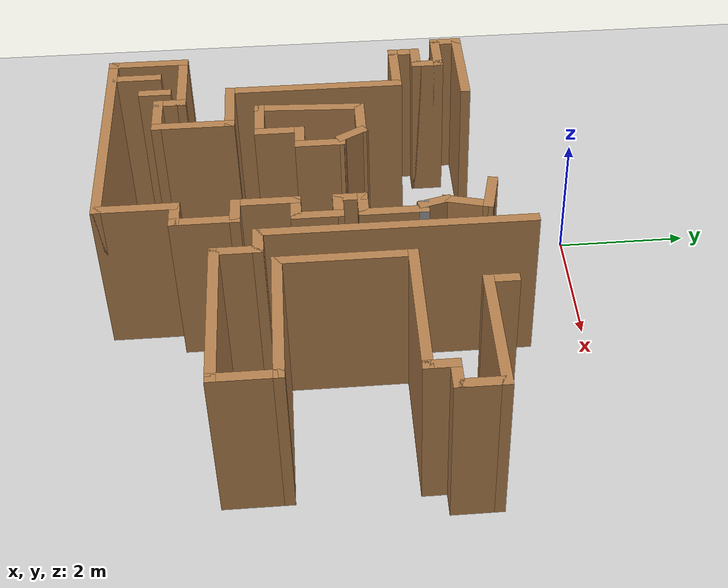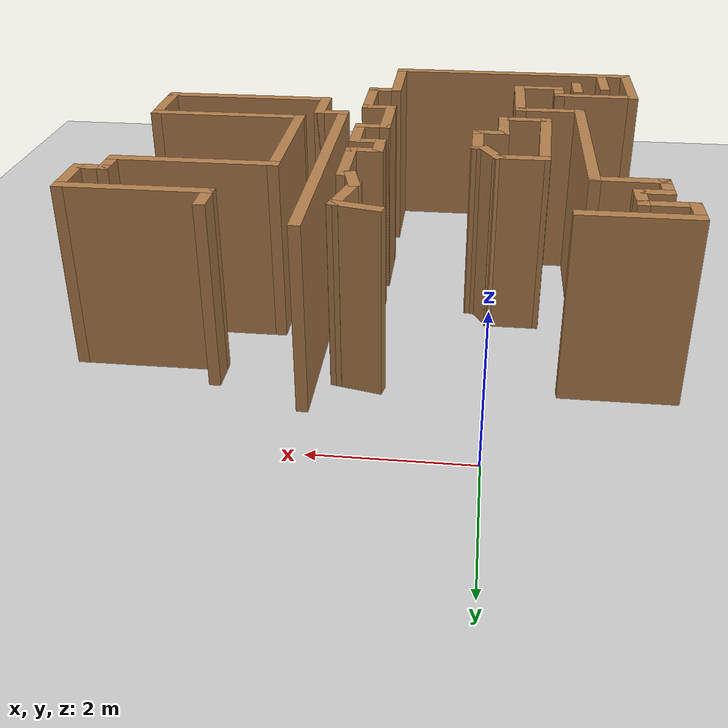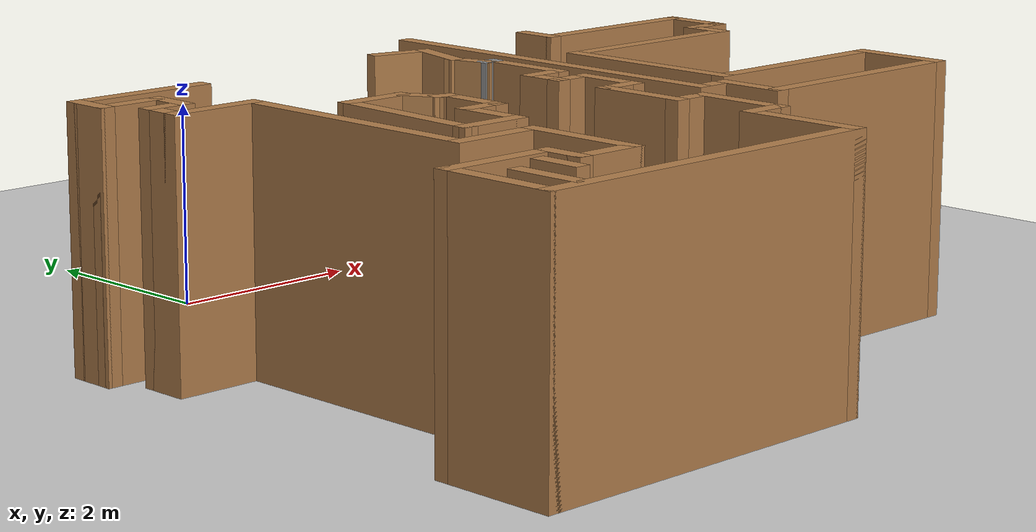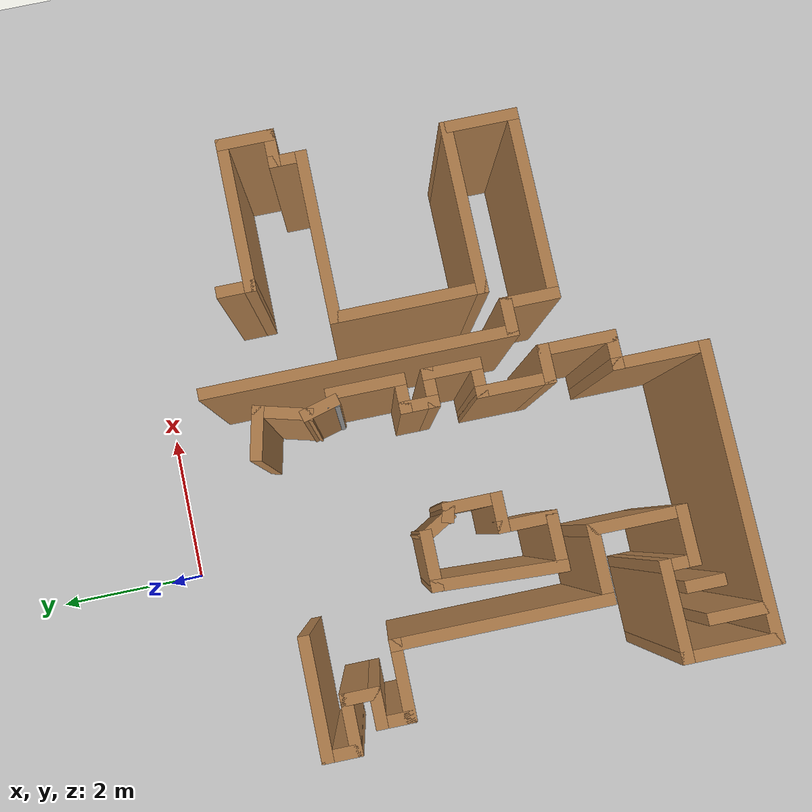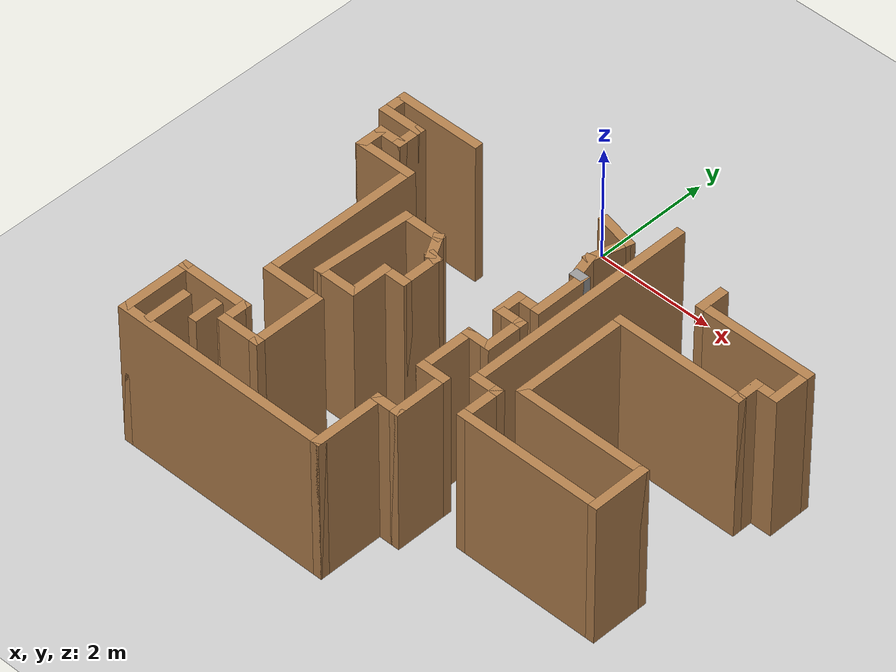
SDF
<sdf version="1.7">
 <world name="default">
  <model name="ground_plane">
   <static>1</static>
   <link name="link">
    <collision name="collision">
     <geometry><plane><normal>0 0 1</normal><size>100 100</size></plane></geometry>
     <surface>
      <contact><collide_bitmask>65535</collide_bitmask></contact>
      <friction><ode><mu>100</mu><mu2>50</mu2></ode></friction>
     </surface>
    </collision>
    <visual name="visual">
     <cast_shadows>0</cast_shadows>
     <geometry><plane><normal>0 0 1</normal><size>100 100</size></plane></geometry>
     <material>
      <script><uri>file://media/materials/scripts/gazebo.material</uri><name>Gazebo/Grey</name></script>
     </material>
    </visual>
   </link>
  </model>
  <model name="map_32">
   <pose>1.44168 -0.43788 0 0 -0 0</pose>
   <link name="Wall_123">
    <collision name="Wall_123_Collision">
     <geometry><box><size>0.678088 0.15 2.5</size></box></geometry>
     <pose>0 0 1.25 0 -0 0</pose>
    </collision>
    <visual name="Wall_123_Visual">
     <pose>0 0 1.25 0 -0 0</pose>
     <geometry><box><size>0.678088 0.15 2.5</size></box></geometry>
     <material>
      <script><uri>file://media/materials/scripts/gazebo.material</uri><name>Gazebo/Wood</name></script>
      <ambient>1 1 1 1</ambient>
     </material>
     <meta><layer>0</layer></meta>
    </visual>
    <pose>0.125069 -0.998927 0 0 -0 -0.226782</pose>
   </link>
   <link name="Wall_130">
    <collision name="Wall_130_Collision">
     <geometry><box><size>0.75 0.15 2.5</size></box></geometry>
     <pose>0 0 1.25 0 -0 0</pose>
    </collision>
    <visual name="Wall_130_Visual">
     <pose>0 0 1.25 0 -0 0</pose>
     <geometry><box><size>0.75 0.15 2.5</size></box></geometry>
     <material>
      <script><uri>file://media/materials/scripts/gazebo.material</uri><name>Gazebo/Wood</name></script>
      <ambient>1 1 1 1</ambient>
     </material>
     <meta><layer>0</layer></meta>
    </visual>
    <pose>-1.8838 -4.27841 0 0 -0 0</pose>
   </link>
   <link name="Wall_131">
    <collision name="Wall_131_Collision">
     <geometry><box><size>0.75 0.15 2.5</size></box></geometry>
     <pose>0 0 1.25 0 -0 0</pose>
    </collision>
    <visual name="Wall_131_Visual">
     <pose>0 0 1.25 0 -0 0</pose>
     <geometry><box><size>0.75 0.15 2.5</size></box></geometry>
     <material>
      <script><uri>file://media/materials/scripts/gazebo.material</uri><name>Gazebo/Wood</name></script>
      <ambient>1 1 1 1</ambient>
     </material>
     <meta><layer>0</layer></meta>
    </visual>
    <pose>-1.5838 -3.97841 0 0 -0 1.5708</pose>
   </link>
   <link name="Wall_132">
    <collision name="Wall_132_Collision">
     <geometry><box><size>0.5 0.15 2.5</size></box></geometry>
     <pose>0 0 1.25 0 -0 0</pose>
    </collision>
    <visual name="Wall_132_Visual">
     <pose>0 0 1.25 0 -0 0</pose>
     <geometry><box><size>0.5 0.15 2.5</size></box></geometry>
     <material>
      <script><uri>file://media/materials/scripts/gazebo.material</uri><name>Gazebo/Wood</name></script>
      <ambient>1 1 1 1</ambient>
     </material>
     <meta><layer>0</layer></meta>
    </visual>
    <pose>-1.4088 -3.67841 0 0 -0 0</pose>
   </link>
   <link name="Wall_133">
    <collision name="Wall_133_Collision">
     <geometry><box><size>0.75 0.15 2.5</size></box></geometry>
     <pose>0 0 1.25 0 -0 0</pose>
    </collision>
    <visual name="Wall_133_Visual">
     <pose>0 0 1.25 0 -0 0</pose>
     <geometry><box><size>0.75 0.15 2.5</size></box></geometry>
     <material>
      <script><uri>file://media/materials/scripts/gazebo.material</uri><name>Gazebo/Wood</name></script>
      <ambient>1 1 1 1</ambient>
     </material>
     <meta><layer>0</layer></meta>
    </visual>
    <pose>-1.2338 -3.37841 0 0 -0 1.5708</pose>
   </link>
   <link name="Wall_134">
    <collision name="Wall_134_Collision">
     <geometry><box><size>0.25 0.15 2.5</size></box></geometry>
     <pose>0 0 1.25 0 -0 0</pose>
    </collision>
    <visual name="Wall_134_Visual">
     <pose>0 0 1.25 0 -0 0</pose>
     <geometry><box><size>0.25 0.15 2.5</size></box></geometry>
     <material>
      <script><uri>file://media/materials/scripts/gazebo.material</uri><name>Gazebo/Wood</name></script>
      <ambient>1 1 1 1</ambient>
     </material>
     <meta><layer>0</layer></meta>
    </visual>
    <pose>-1.28209 -3.06547 0 0 -0 2.87979</pose>
   </link>
   <link name="Wall_135">
    <collision name="Wall_135_Collision">
     <geometry><box><size>0.5 0.15 2.5</size></box></geometry>
     <pose>0 0 1.25 0 -0 0</pose>
    </collision>
    <visual name="Wall_135_Visual">
     <pose>0 0 1.25 0 -0 0</pose>
     <geometry><box><size>0.5 0.15 2.5</size></box></geometry>
     <material>
      <script><uri>file://media/materials/scripts/gazebo.material</uri><name>Gazebo/Wood</name></script>
      <ambient>1 1 1 1</ambient>
     </material>
     <meta><layer>0</layer></meta>
    </visual>
    <pose>-1.41789 -2.90097 0 0 -0 2.0944</pose>
   </link>
   <link name="Wall_136">
    <collision name="Wall_136_Collision">
     <geometry><box><size>0.75 0.15 2.5</size></box></geometry>
     <pose>0 0 1.25 0 -0 0</pose>
    </collision>
    <visual name="Wall_136_Visual">
     <pose>0 0 1.25 0 -0 0</pose>
     <geometry><box><size>0.75 0.15 2.5</size></box></geometry>
     <material>
      <script><uri>file://media/materials/scripts/gazebo.material</uri><name>Gazebo/Wood</name></script>
      <ambient>1 1 1 1</ambient>
     </material>
     <meta><layer>0</layer></meta>
    </visual>
    <pose>-1.80539 -2.74942 0 0 -0 3.14159</pose>
   </link>
   <link name="Wall_137">
    <collision name="Wall_137_Collision">
     <geometry><box><size>1.681 0.15 2.5</size></box></geometry>
     <pose>0 0 1.25 0 -0 0</pose>
    </collision>
    <visual name="Wall_137_Visual">
     <pose>0 0 1.25 0 -0 0</pose>
     <geometry><box><size>1.681 0.15 2.5</size></box></geometry>
     <material>
      <script><uri>file://media/materials/scripts/gazebo.material</uri><name>Gazebo/Wood</name></script>
      <ambient>1 1 1 1</ambient>
     </material>
     <meta><layer>0</layer></meta>
    </visual>
    <pose>-2.14459 -3.51392 0 0 -0 -1.62203</pose>
   </link>
   <link name="Wall_139">
    <collision name="Wall_139_Collision">
     <geometry><box><size>0.75 0.15 2.5</size></box></geometry>
     <pose>0 0 1.25 0 -0 0</pose>
    </collision>
    <visual name="Wall_139_Visual">
     <pose>0 0 1.25 0 -0 0</pose>
     <geometry><box><size>0.75 0.15 2.5</size></box></geometry>
     <material>
      <script><uri>file://media/materials/scripts/gazebo.material</uri><name>Gazebo/Wood</name></script>
      <ambient>1 1 1 1</ambient>
     </material>
     <meta><layer>0</layer></meta>
    </visual>
    <pose>-3.14925 -6.1875 0 0 -0 -1.5708</pose>
   </link>
   <link name="Wall_142">
    <collision name="Wall_142_Collision">
     <geometry><box><size>0.5 0.15 2.5</size></box></geometry>
     <pose>0 0 1.25 0 -0 0</pose>
    </collision>
    <visual name="Wall_142_Visual">
     <pose>0 0 1.25 0 -0 0</pose>
     <geometry><box><size>0.5 0.15 2.5</size></box></geometry>
     <material>
      <script><uri>file://media/materials/scripts/gazebo.material</uri><name>Gazebo/Wood</name></script>
      <ambient>1 1 1 1</ambient>
     </material>
     <meta><layer>0</layer></meta>
    </visual>
    <pose>-2.72686 -5.89352 0 0 -0 1.5708</pose>
   </link>
   <link name="Wall_24">
    <collision name="Wall_24_Collision">
     <geometry><box><size>1.5 0.15 2.5</size></box></geometry>
     <pose>0 0 1.25 0 -0 0</pose>
    </collision>
    <visual name="Wall_24_Visual">
     <pose>0 0 1.25 0 -0 0</pose>
     <geometry><box><size>1.5 0.15 2.5</size></box></geometry>
     <material>
      <script><uri>file://media/materials/scripts/gazebo.material</uri><name>Gazebo/Wood</name></script>
      <ambient>1 1 1 1</ambient>
     </material>
     <meta><layer>0</layer></meta>
    </visual>
    <pose>-3.10735 -1.07593 0 0 -0 3.14159</pose>
   </link>
   <link name="Wall_27">
    <collision name="Wall_27_Collision">
     <geometry><box><size>0.5 0.15 2.5</size></box></geometry>
     <pose>0 0 1.25 0 -0 0</pose>
    </collision>
    <visual name="Wall_27_Visual">
     <pose>0 0 1.25 0 -0 0</pose>
     <geometry><box><size>0.5 0.15 2.5</size></box></geometry>
     <material>
      <script><uri>file://media/materials/scripts/gazebo.material</uri><name>Gazebo/Wood</name></script>
      <ambient>1 1 1 1</ambient>
     </material>
     <meta><layer>0</layer></meta>
    </visual>
    <pose>-3.78235 -1.25093 0 0 -0 -1.5708</pose>
   </link>
   <link name="Wall_28">
    <collision name="Wall_28_Collision">
     <geometry><box><size>0.75 0.15 2.5</size></box></geometry>
     <pose>0 0 1.25 0 -0 0</pose>
    </collision>
    <visual name="Wall_28_Visual">
     <pose>0 0 1.25 0 -0 0</pose>
     <geometry><box><size>0.75 0.15 2.5</size></box></geometry>
     <material>
      <script><uri>file://media/materials/scripts/gazebo.material</uri><name>Gazebo/Wood</name></script>
      <ambient>1 1 1 1</ambient>
     </material>
     <meta><layer>0</layer></meta>
    </visual>
    <pose>-3.48235 -1.42593 0 0 -0 0</pose>
   </link>
   <link name="Wall_29">
    <collision name="Wall_29_Collision">
     <geometry><box><size>0.5 0.15 2.5</size></box></geometry>
     <pose>0 0 1.25 0 -0 0</pose>
    </collision>
    <visual name="Wall_29_Visual">
     <pose>0 0 1.25 0 -0 0</pose>
     <geometry><box><size>0.5 0.15 2.5</size></box></geometry>
     <material>
      <script><uri>file://media/materials/scripts/gazebo.material</uri><name>Gazebo/Wood</name></script>
      <ambient>1 1 1 1</ambient>
     </material>
     <meta><layer>0</layer></meta>
    </visual>
    <pose>-3.18235 -1.60092 0 0 -0 -1.5708</pose>
   </link>
   <link name="Wall_30">
    <collision name="Wall_30_Collision">
     <geometry><box><size>0.5 0.15 2.5</size></box></geometry>
     <pose>0 0 1.25 0 -0 0</pose>
    </collision>
    <visual name="Wall_30_Visual">
     <pose>0 0 1.25 0 -0 0</pose>
     <geometry><box><size>0.5 0.15 2.5</size></box></geometry>
     <material>
      <script><uri>file://media/materials/scripts/gazebo.material</uri><name>Gazebo/Wood</name></script>
      <ambient>1 1 1 1</ambient>
     </material>
     <meta><layer>0</layer></meta>
    </visual>
    <pose>-3.35735 -1.77592 0 0 -0 3.14159</pose>
   </link>
   <link name="Wall_31">
    <collision name="Wall_31_Collision">
     <geometry><box><size>0.5 0.15 2.5</size></box></geometry>
     <pose>0 0 1.25 0 -0 0</pose>
    </collision>
    <visual name="Wall_31_Visual">
     <pose>0 0 1.25 0 -0 0</pose>
     <geometry><box><size>0.5 0.15 2.5</size></box></geometry>
     <material>
      <script><uri>file://media/materials/scripts/gazebo.material</uri><name>Gazebo/Wood</name></script>
      <ambient>1 1 1 1</ambient>
     </material>
     <meta><layer>0</layer></meta>
    </visual>
    <pose>-3.53235 -1.95093 0 0 -0 -1.5708</pose>
   </link>
   <link name="Wall_32">
    <collision name="Wall_32_Collision">
     <geometry><box><size>1 0.15 2.5</size></box></geometry>
     <pose>0 0 1.25 0 -0 0</pose>
    </collision>
    <visual name="Wall_32_Visual">
     <pose>0 0 1.25 0 -0 0</pose>
     <geometry><box><size>1 0.15 2.5</size></box></geometry>
     <material>
      <script><uri>file://media/materials/scripts/gazebo.material</uri><name>Gazebo/Wood</name></script>
      <ambient>1 1 1 1</ambient>
     </material>
     <meta><layer>0</layer></meta>
    </visual>
    <pose>-3.10735 -2.12593 0 0 -0 0</pose>
   </link>
   <link name="Wall_33">
    <collision name="Wall_33_Collision">
     <geometry><box><size>2.75 0.15 2.5</size></box></geometry>
     <pose>0 0 1.25 0 -0 0</pose>
    </collision>
    <visual name="Wall_33_Visual">
     <pose>0 0 1.25 0 -0 0</pose>
     <geometry><box><size>2.75 0.15 2.5</size></box></geometry>
     <material>
      <script><uri>file://media/materials/scripts/gazebo.material</uri><name>Gazebo/Wood</name></script>
      <ambient>1 1 1 1</ambient>
     </material>
     <meta><layer>0</layer></meta>
    </visual>
    <pose>-2.68235 -3.42592 0 0 -0 -1.5708</pose>
   </link>
   <link name="Wall_34">
    <collision name="Wall_34_Collision">
     <geometry><box><size>1 0.15 2.5</size></box></geometry>
     <pose>0 0 1.25 0 -0 0</pose>
    </collision>
    <visual name="Wall_34_Visual">
     <pose>0 0 1.25 0 -0 0</pose>
     <geometry><box><size>1 0.15 2.5</size></box></geometry>
     <material>
      <script><uri>file://media/materials/scripts/gazebo.material</uri><name>Gazebo/Wood</name></script>
      <ambient>1 1 1 1</ambient>
     </material>
     <meta><layer>0</layer></meta>
    </visual>
    <pose>-2.25735 -4.72593 0 0 -0 0</pose>
   </link>
   <link name="Wall_37">
    <collision name="Wall_37_Collision">
     <geometry><box><size>1.25 0.15 2.5</size></box></geometry>
     <pose>0 0 1.25 0 -0 0</pose>
    </collision>
    <visual name="Wall_37_Visual">
     <pose>0 0 1.25 0 -0 0</pose>
     <geometry><box><size>1.25 0.15 2.5</size></box></geometry>
     <material>
      <script><uri>file://media/materials/scripts/gazebo.material</uri><name>Gazebo/Wood</name></script>
      <ambient>1 1 1 1</ambient>
     </material>
     <meta><layer>0</layer></meta>
    </visual>
    <pose>-1.83235 -5.27592 0 0 -0 -1.5708</pose>
   </link>
   <link name="Wall_40">
    <collision name="Wall_40_Collision">
     <geometry><box><size>0.75 0.15 2.5</size></box></geometry>
     <pose>0 0 1.25 0 -0 0</pose>
    </collision>
    <visual name="Wall_40_Visual">
     <pose>0 0 1.25 0 -0 0</pose>
     <geometry><box><size>0.75 0.15 2.5</size></box></geometry>
     <material>
      <script><uri>file://media/materials/scripts/gazebo.material</uri><name>Gazebo/Wood</name></script>
      <ambient>1 1 1 1</ambient>
     </material>
     <meta><layer>0</layer></meta>
    </visual>
    <pose>-2.13235 -5.82592 0 0 -0 3.14159</pose>
   </link>
   <link name="Wall_41">
    <collision name="Wall_41_Collision">
     <geometry><box><size>0.5 0.15 2.5</size></box></geometry>
     <pose>0 0 1.25 0 -0 0</pose>
    </collision>
    <visual name="Wall_41_Visual">
     <pose>0 0 1.25 0 -0 0</pose>
     <geometry><box><size>0.5 0.15 2.5</size></box></geometry>
     <material>
      <script><uri>file://media/materials/scripts/gazebo.material</uri><name>Gazebo/Wood</name></script>
      <ambient>1 1 1 1</ambient>
     </material>
     <meta><layer>0</layer></meta>
    </visual>
    <pose>-2.43235 -5.65092 0 0 -0 1.5708</pose>
   </link>
   <link name="Wall_42">
    <collision name="Wall_42_Collision">
     <geometry><box><size>1.25 0.15 2.5</size></box></geometry>
     <pose>0 0 1.25 0 -0 0</pose>
    </collision>
    <visual name="Wall_42_Visual">
     <pose>0 0 1.25 0 -0 0</pose>
     <geometry><box><size>1.25 0.15 2.5</size></box></geometry>
     <material>
      <script><uri>file://media/materials/scripts/gazebo.material</uri><name>Gazebo/Wood</name></script>
      <ambient>1 1 1 1</ambient>
     </material>
     <meta><layer>0</layer></meta>
    </visual>
    <pose>-2.98235 -5.47593 0 0 -0 3.14159</pose>
   </link>
   <link name="Wall_43">
    <collision name="Wall_43_Collision">
     <geometry><box><size>1.25 0.15 2.5</size></box></geometry>
     <pose>0 0 1.25 0 -0 0</pose>
    </collision>
    <visual name="Wall_43_Visual">
     <pose>0 0 1.25 0 -0 0</pose>
     <geometry><box><size>1.25 0.15 2.5</size></box></geometry>
     <material>
      <script><uri>file://media/materials/scripts/gazebo.material</uri><name>Gazebo/Wood</name></script>
      <ambient>1 1 1 1</ambient>
     </material>
     <meta><layer>0</layer></meta>
    </visual>
    <pose>-3.53235 -6.02592 0 0 -0 -1.5708</pose>
   </link>
   <link name="Wall_44">
    <collision name="Wall_44_Collision">
     <geometry><box><size>3.75 0.15 2.5</size></box></geometry>
     <pose>0 0 1.25 0 -0 0</pose>
    </collision>
    <visual name="Wall_44_Visual">
     <pose>0 0 1.25 0 -0 0</pose>
     <geometry><box><size>3.75 0.15 2.5</size></box></geometry>
     <material>
      <script><uri>file://media/materials/scripts/gazebo.material</uri><name>Gazebo/Wood</name></script>
      <ambient>1 1 1 1</ambient>
     </material>
     <meta><layer>0</layer></meta>
    </visual>
    <pose>-1.73235 -6.57592 0 0 -0 0</pose>
   </link>
   <link name="Wall_45">
    <collision name="Wall_45_Collision">
     <geometry><box><size>1.25 0.15 2.5</size></box></geometry>
     <pose>0 0 1.25 0 -0 0</pose>
    </collision>
    <visual name="Wall_45_Visual">
     <pose>0 0 1.25 0 -0 0</pose>
     <geometry><box><size>1.25 0.15 2.5</size></box></geometry>
     <material>
      <script><uri>file://media/materials/scripts/gazebo.material</uri><name>Gazebo/Wood</name></script>
      <ambient>1 1 1 1</ambient>
     </material>
     <meta><layer>0</layer></meta>
    </visual>
    <pose>0.067648 -6.02592 0 0 -0 1.5708</pose>
   </link>
   <link name="Wall_46">
    <collision name="Wall_46_Collision">
     <geometry><box><size>0.5 0.15 2.5</size></box></geometry>
     <pose>0 0 1.25 0 -0 0</pose>
    </collision>
    <visual name="Wall_46_Visual">
     <pose>0 0 1.25 0 -0 0</pose>
     <geometry><box><size>0.5 0.15 2.5</size></box></geometry>
     <material>
      <script><uri>file://media/materials/scripts/gazebo.material</uri><name>Gazebo/Wood</name></script>
      <ambient>1 1 1 1</ambient>
     </material>
     <meta><layer>0</layer></meta>
    </visual>
    <pose>0.242648 -5.47593 0 0 -0 0</pose>
   </link>
   <link name="Wall_47">
    <collision name="Wall_47_Collision">
     <geometry><box><size>1 0.15 2.5</size></box></geometry>
     <pose>0 0 1.25 0 -0 0</pose>
    </collision>
    <visual name="Wall_47_Visual">
     <pose>0 0 1.25 0 -0 0</pose>
     <geometry><box><size>1 0.15 2.5</size></box></geometry>
     <material>
      <script><uri>file://media/materials/scripts/gazebo.material</uri><name>Gazebo/Wood</name></script>
      <ambient>1 1 1 1</ambient>
     </material>
     <meta><layer>0</layer></meta>
    </visual>
    <pose>0.417648 -5.05093 0 0 -0 1.5708</pose>
   </link>
   <link name="Wall_48">
    <collision name="Wall_48_Collision">
     <geometry><box><size>0.5 0.15 2.5</size></box></geometry>
     <pose>0 0 1.25 0 -0 0</pose>
    </collision>
    <visual name="Wall_48_Visual">
     <pose>0 0 1.25 0 -0 0</pose>
     <geometry><box><size>0.5 0.15 2.5</size></box></geometry>
     <material>
      <script><uri>file://media/materials/scripts/gazebo.material</uri><name>Gazebo/Wood</name></script>
      <ambient>1 1 1 1</ambient>
     </material>
     <meta><layer>0</layer></meta>
    </visual>
    <pose>0.242648 -4.62592 0 0 -0 3.14159</pose>
   </link>
   <link name="Wall_49">
    <collision name="Wall_49_Collision">
     <geometry><box><size>1 0.15 2.5</size></box></geometry>
     <pose>0 0 1.25 0 -0 0</pose>
    </collision>
    <visual name="Wall_49_Visual">
     <pose>0 0 1.25 0 -0 0</pose>
     <geometry><box><size>1 0.15 2.5</size></box></geometry>
     <material>
      <script><uri>file://media/materials/scripts/gazebo.material</uri><name>Gazebo/Wood</name></script>
      <ambient>1 1 1 1</ambient>
     </material>
     <meta><layer>0</layer></meta>
    </visual>
    <pose>0.067648 -4.20092 0 0 -0 1.5708</pose>
   </link>
   <link name="Wall_50">
    <collision name="Wall_50_Collision">
     <geometry><box><size>0.5 0.15 2.5</size></box></geometry>
     <pose>0 0 1.25 0 -0 0</pose>
    </collision>
    <visual name="Wall_50_Visual">
     <pose>0 0 1.25 0 -0 0</pose>
     <geometry><box><size>0.5 0.15 2.5</size></box></geometry>
     <material>
      <script><uri>file://media/materials/scripts/gazebo.material</uri><name>Gazebo/Wood</name></script>
      <ambient>1 1 1 1</ambient>
     </material>
     <meta><layer>0</layer></meta>
    </visual>
    <pose>0.242648 -3.77592 0 0 -0 0</pose>
   </link>
   <link name="Wall_51">
    <collision name="Wall_51_Collision">
     <geometry><box><size>0.75 0.15 2.5</size></box></geometry>
     <pose>0 0 1.25 0 -0 0</pose>
    </collision>
    <visual name="Wall_51_Visual">
     <pose>0 0 1.25 0 -0 0</pose>
     <geometry><box><size>0.75 0.15 2.5</size></box></geometry>
     <material>
      <script><uri>file://media/materials/scripts/gazebo.material</uri><name>Gazebo/Wood</name></script>
      <ambient>1 1 1 1</ambient>
     </material>
     <meta><layer>0</layer></meta>
    </visual>
    <pose>0.417648 -3.47593 0 0 -0 1.5708</pose>
   </link>
   <link name="Wall_52">
    <collision name="Wall_52_Collision">
     <geometry><box><size>0.5 0.15 2.5</size></box></geometry>
     <pose>0 0 1.25 0 -0 0</pose>
    </collision>
    <visual name="Wall_52_Visual">
     <pose>0 0 1.25 0 -0 0</pose>
     <geometry><box><size>0.5 0.15 2.5</size></box></geometry>
     <material>
      <script><uri>file://media/materials/scripts/gazebo.material</uri><name>Gazebo/Wood</name></script>
      <ambient>1 1 1 1</ambient>
     </material>
     <meta><layer>0</layer></meta>
    </visual>
    <pose>0.242648 -3.17592 0 0 -0 3.14159</pose>
   </link>
   <link name="Wall_53">
    <collision name="Wall_53_Collision">
     <geometry><box><size>0.5 0.15 2.5</size></box></geometry>
     <pose>0 0 1.25 0 -0 0</pose>
    </collision>
    <visual name="Wall_53_Visual">
     <pose>0 0 1.25 0 -0 0</pose>
     <geometry><box><size>0.5 0.15 2.5</size></box></geometry>
     <material>
      <script><uri>file://media/materials/scripts/gazebo.material</uri><name>Gazebo/Wood</name></script>
      <ambient>1 1 1 1</ambient>
     </material>
     <meta><layer>0</layer></meta>
    </visual>
    <pose>0.067648 -3.00093 0 0 -0 1.5708</pose>
   </link>
   <link name="Wall_54">
    <collision name="Wall_54_Collision">
     <geometry><box><size>0.5 0.15 2.5</size></box></geometry>
     <pose>0 0 1.25 0 -0 0</pose>
    </collision>
    <visual name="Wall_54_Visual">
     <pose>0 0 1.25 0 -0 0</pose>
     <geometry><box><size>0.5 0.15 2.5</size></box></geometry>
     <material>
      <script><uri>file://media/materials/scripts/gazebo.material</uri><name>Gazebo/Wood</name></script>
      <ambient>1 1 1 1</ambient>
     </material>
     <meta><layer>0</layer></meta>
    </visual>
    <pose>0.242648 -2.82592 0 0 -0 0</pose>
   </link>
   <link name="Wall_55">
    <collision name="Wall_55_Collision">
     <geometry><box><size>1 0.15 2.5</size></box></geometry>
     <pose>0 0 1.25 0 -0 0</pose>
    </collision>
    <visual name="Wall_55_Visual">
     <pose>0 0 1.25 0 -0 0</pose>
     <geometry><box><size>1 0.15 2.5</size></box></geometry>
     <material>
      <script><uri>file://media/materials/scripts/gazebo.material</uri><name>Gazebo/Wood</name></script>
      <ambient>1 1 1 1</ambient>
     </material>
     <meta><layer>0</layer></meta>
    </visual>
    <pose>0.417648 -2.40092 0 0 -0 1.5708</pose>
   </link>
   <link name="Wall_56">
    <collision name="Wall_56_Collision">
     <geometry><box><size>0.25 0.15 2.5</size></box></geometry>
     <pose>0 0 1.25 0 -0 0</pose>
    </collision>
    <visual name="Wall_56_Visual">
     <pose>0 0 1.25 0 -0 0</pose>
     <geometry><box><size>0.25 0.15 2.5</size></box></geometry>
     <material>
      <script><uri>file://media/materials/scripts/gazebo.material</uri><name>Gazebo/Grey</name></script>
      <ambient>1 1 1 1</ambient>
     </material>
     <meta><layer>0</layer></meta>
    </visual>
    <pose>0.367648 -1.97592 0 0 -0 3.14159</pose>
   </link>
   <link name="Wall_57">
    <collision name="Wall_57_Collision">
     <geometry><box><size>0.5 0.15 2.5</size></box></geometry>
     <pose>0 0 1.25 0 -0 0</pose>
    </collision>
    <visual name="Wall_57_Visual">
     <pose>0 0 1.25 0 -0 0</pose>
     <geometry><box><size>0.5 0.15 2.5</size></box></geometry>
     <material>
      <script><uri>file://media/materials/scripts/gazebo.material</uri><name>Gazebo/Wood</name></script>
      <ambient>1 1 1 1</ambient>
     </material>
     <meta><layer>0</layer></meta>
    </visual>
    <pose>0.272354 -1.80689 0 0 -0 1.8326</pose>
   </link>
   <link name="Wall_58">
    <collision name="Wall_58_Collision">
     <geometry><box><size>0.75 0.15 2.5</size></box></geometry>
     <pose>0 0 1.25 0 -0 0</pose>
    </collision>
    <visual name="Wall_58_Visual">
     <pose>0 0 1.25 0 -0 0</pose>
     <geometry><box><size>0.75 0.15 2.5</size></box></geometry>
     <material>
      <script><uri>file://media/materials/scripts/gazebo.material</uri><name>Gazebo/Wood</name></script>
      <ambient>1 1 1 1</ambient>
     </material>
     <meta><layer>0</layer></meta>
    </visual>
    <pose>0.304707 -1.34807 0 0 -0 1.309</pose>
   </link>
   <link name="Wall_63">
    <collision name="Wall_63_Collision">
     <geometry><box><size>4 0.15 2.5</size></box></geometry>
     <pose>0 0 1.25 0 -0 0</pose>
    </collision>
    <visual name="Wall_63_Visual">
     <pose>0 0 1.25 0 -0 0</pose>
     <geometry><box><size>4 0.15 2.5</size></box></geometry>
     <material>
      <script><uri>file://media/materials/scripts/gazebo.material</uri><name>Gazebo/Wood</name></script>
      <ambient>1 1 1 1</ambient>
     </material>
     <meta><layer>0</layer></meta>
    </visual>
    <pose>0.732352 -2.38329 0 0 -0 -1.5708</pose>
   </link>
   <link name="Wall_64">
    <collision name="Wall_64_Collision">
     <geometry><box><size>0.5 0.15 2.5</size></box></geometry>
     <pose>0 0 1.25 0 -0 0</pose>
    </collision>
    <visual name="Wall_64_Visual">
     <pose>0 0 1.25 0 -0 0</pose>
     <geometry><box><size>0.5 0.15 2.5</size></box></geometry>
     <material>
      <script><uri>file://media/materials/scripts/gazebo.material</uri><name>Gazebo/Wood</name></script>
      <ambient>1 1 1 1</ambient>
     </material>
     <meta><layer>0</layer></meta>
    </visual>
    <pose>0.907352 -4.3083 0 0 -0 0</pose>
   </link>
   <link name="Wall_65">
    <collision name="Wall_65_Collision">
     <geometry><box><size>0.75 0.15 2.5</size></box></geometry>
     <pose>0 0 1.25 0 -0 0</pose>
    </collision>
    <visual name="Wall_65_Visual">
     <pose>0 0 1.25 0 -0 0</pose>
     <geometry><box><size>0.75 0.15 2.5</size></box></geometry>
     <material>
      <script><uri>file://media/materials/scripts/gazebo.material</uri><name>Gazebo/Wood</name></script>
      <ambient>1 1 1 1</ambient>
     </material>
     <meta><layer>0</layer></meta>
    </visual>
    <pose>1.08235 -4.6083 0 0 -0 -1.5708</pose>
   </link>
   <link name="Wall_66">
    <collision name="Wall_66_Collision">
     <geometry><box><size>2.5 0.15 2.5</size></box></geometry>
     <pose>0 0 1.25 0 -0 0</pose>
    </collision>
    <visual name="Wall_66_Visual">
     <pose>0 0 1.25 0 -0 0</pose>
     <geometry><box><size>2.5 0.15 2.5</size></box></geometry>
     <material>
      <script><uri>file://media/materials/scripts/gazebo.material</uri><name>Gazebo/Wood</name></script>
      <ambient>1 1 1 1</ambient>
     </material>
     <meta><layer>0</layer></meta>
    </visual>
    <pose>2.25735 -4.90829 0 0 -0 0</pose>
   </link>
   <link name="Wall_69">
    <collision name="Wall_69_Collision">
     <geometry><box><size>1 0.15 2.5</size></box></geometry>
     <pose>0 0 1.25 0 -0 0</pose>
    </collision>
    <visual name="Wall_69_Visual">
     <pose>0 0 1.25 0 -0 0</pose>
     <geometry><box><size>1 0.15 2.5</size></box></geometry>
     <material>
      <script><uri>file://media/materials/scripts/gazebo.material</uri><name>Gazebo/Wood</name></script>
      <ambient>1 1 1 1</ambient>
     </material>
     <meta><layer>0</layer></meta>
    </visual>
    <pose>3.43235 -4.4833 0 0 -0 1.5708</pose>
   </link>
   <link name="Wall_70">
    <collision name="Wall_70_Collision">
     <geometry><box><size>2.25 0.15 2.5</size></box></geometry>
     <pose>0 0 1.25 0 -0 0</pose>
    </collision>
    <visual name="Wall_70_Visual">
     <pose>0 0 1.25 0 -0 0</pose>
     <geometry><box><size>2.25 0.15 2.5</size></box></geometry>
     <material>
      <script><uri>file://media/materials/scripts/gazebo.material</uri><name>Gazebo/Wood</name></script>
      <ambient>1 1 1 1</ambient>
     </material>
     <meta><layer>0</layer></meta>
    </visual>
    <pose>2.38235 -4.0583 0 0 -0 3.14159</pose>
   </link>
   <link name="Wall_71">
    <collision name="Wall_71_Collision">
     <geometry><box><size>2 0.15 2.5</size></box></geometry>
     <pose>0 0 1.25 0 -0 0</pose>
    </collision>
    <visual name="Wall_71_Visual">
     <pose>0 0 1.25 0 -0 0</pose>
     <geometry><box><size>2 0.15 2.5</size></box></geometry>
     <material>
      <script><uri>file://media/materials/scripts/gazebo.material</uri><name>Gazebo/Wood</name></script>
      <ambient>1 1 1 1</ambient>
     </material>
     <meta><layer>0</layer></meta>
    </visual>
    <pose>1.33235 -3.13329 0 0 -0 1.5708</pose>
   </link>
   <link name="Wall_72">
    <collision name="Wall_72_Collision">
     <geometry><box><size>2.25 0.15 2.5</size></box></geometry>
     <pose>0 0 1.25 0 -0 0</pose>
    </collision>
    <visual name="Wall_72_Visual">
     <pose>0 0 1.25 0 -0 0</pose>
     <geometry><box><size>2.25 0.15 2.5</size></box></geometry>
     <material>
      <script><uri>file://media/materials/scripts/gazebo.material</uri><name>Gazebo/Wood</name></script>
      <ambient>1 1 1 1</ambient>
     </material>
     <meta><layer>0</layer></meta>
    </visual>
    <pose>2.38235 -2.2083 0 0 -0 0</pose>
   </link>
   <link name="Wall_73">
    <collision name="Wall_73_Collision">
     <geometry><box><size>0.5 0.15 2.5</size></box></geometry>
     <pose>0 0 1.25 0 -0 0</pose>
    </collision>
    <visual name="Wall_73_Visual">
     <pose>0 0 1.25 0 -0 0</pose>
     <geometry><box><size>0.5 0.15 2.5</size></box></geometry>
     <material>
      <script><uri>file://media/materials/scripts/gazebo.material</uri><name>Gazebo/Wood</name></script>
      <ambient>1 1 1 1</ambient>
     </material>
     <meta><layer>0</layer></meta>
    </visual>
    <pose>3.43235 -2.03329 0 0 -0 1.5708</pose>
   </link>
   <link name="Wall_74">
    <collision name="Wall_74_Collision">
     <geometry><box><size>0.5 0.15 2.5</size></box></geometry>
     <pose>0 0 1.25 0 -0 0</pose>
    </collision>
    <visual name="Wall_74_Visual">
     <pose>0 0 1.25 0 -0 0</pose>
     <geometry><box><size>0.5 0.15 2.5</size></box></geometry>
     <material>
      <script><uri>file://media/materials/scripts/gazebo.material</uri><name>Gazebo/Wood</name></script>
      <ambient>1 1 1 1</ambient>
     </material>
     <meta><layer>0</layer></meta>
    </visual>
    <pose>3.60735 -1.8583 0 0 -0 0</pose>
   </link>
   <link name="Wall_75">
    <collision name="Wall_75_Collision">
     <geometry><box><size>0.75 0.15 2.5</size></box></geometry>
     <pose>0 0 1.25 0 -0 0</pose>
    </collision>
    <visual name="Wall_75_Visual">
     <pose>0 0 1.25 0 -0 0</pose>
     <geometry><box><size>0.75 0.15 2.5</size></box></geometry>
     <material>
      <script><uri>file://media/materials/scripts/gazebo.material</uri><name>Gazebo/Wood</name></script>
      <ambient>1 1 1 1</ambient>
     </material>
     <meta><layer>0</layer></meta>
    </visual>
    <pose>3.78235 -1.55829 0 0 -0 1.5708</pose>
   </link>
   <link name="Wall_76">
    <collision name="Wall_76_Collision">
     <geometry><box><size>2 0.15 2.5</size></box></geometry>
     <pose>0 0 1.25 0 -0 0</pose>
    </collision>
    <visual name="Wall_76_Visual">
     <pose>0 0 1.25 0 -0 0</pose>
     <geometry><box><size>2 0.15 2.5</size></box></geometry>
     <material>
      <script><uri>file://media/materials/scripts/gazebo.material</uri><name>Gazebo/Wood</name></script>
      <ambient>1 1 1 1</ambient>
     </material>
     <meta><layer>0</layer></meta>
    </visual>
    <pose>2.85735 -1.25829 0 0 -0 3.14159</pose>
   </link>
   <link name="Wall_77">
    <collision name="Wall_77_Collision">
     <geometry><box><size>0.5 0.15 2.5</size></box></geometry>
     <pose>0 0 1.25 0 -0 0</pose>
    </collision>
    <visual name="Wall_77_Visual">
     <pose>0 0 1.25 0 -0 0</pose>
     <geometry><box><size>0.5 0.15 2.5</size></box></geometry>
     <material>
      <script><uri>file://media/materials/scripts/gazebo.material</uri><name>Gazebo/Wood</name></script>
      <ambient>1 1 1 1</ambient>
     </material>
     <meta><layer>0</layer></meta>
    </visual>
    <pose>1.93235 -1.08329 0 0 -0 1.5708</pose>
   </link>
   <static>1</static>
  </model>
 </world>
</sdf>
